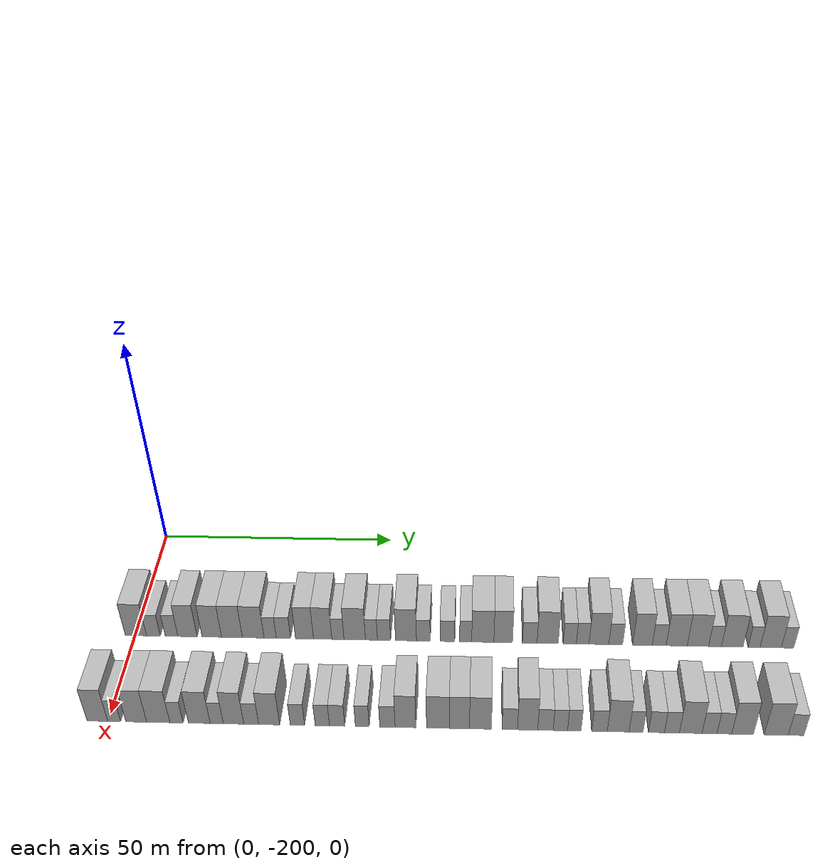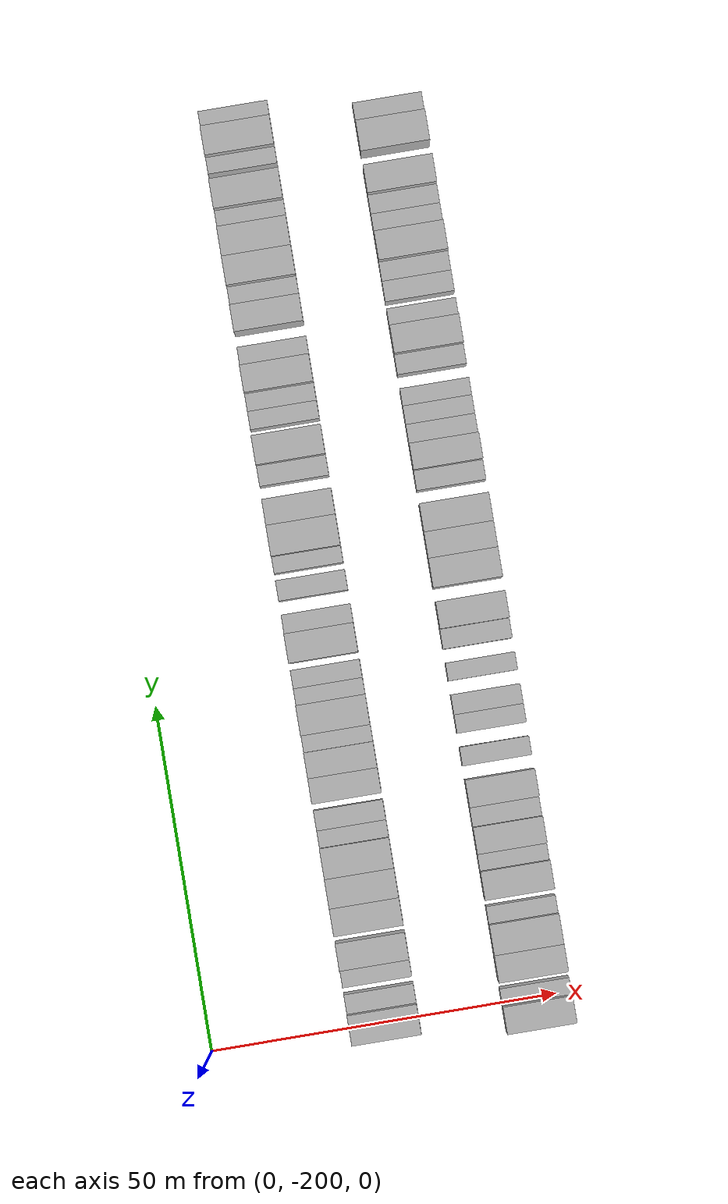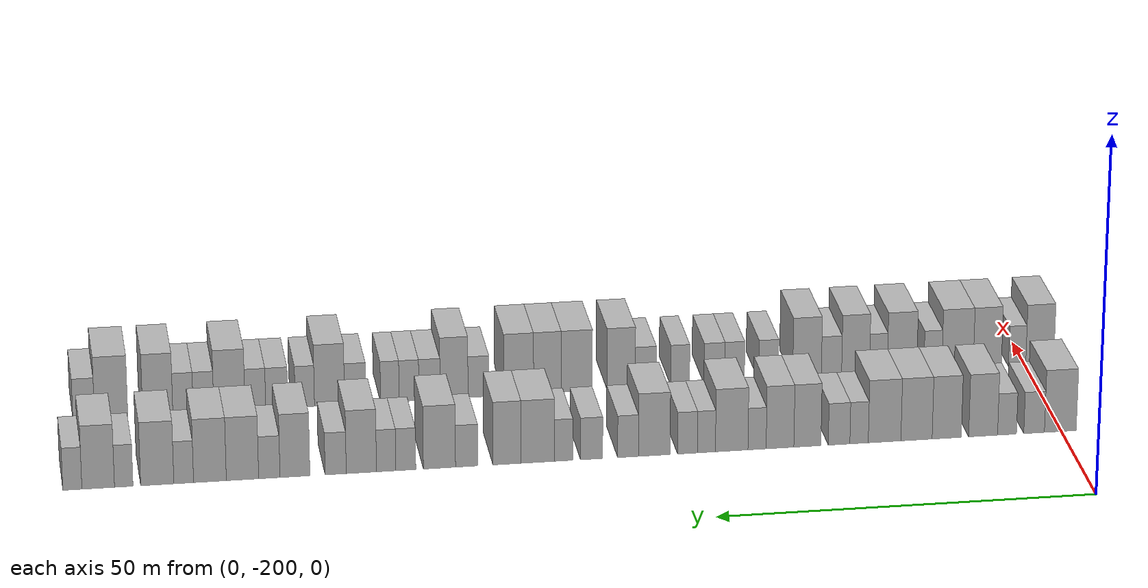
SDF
<sdf version="1.6">
 <world name="default">
  <model name="building_1">
   <static>1</static>
   <pose>25.0000 -199.8333 0 0.000000 0.000000 0.000000</pose>
   <link name="link">
    <pose>0 0 4.50 0 0 0</pose>
    <collision name="collision"><geometry><box><size>10.0000 4.3334 9.0000</size></box></geometry></collision>
    <visual name="visual">
     <cast_shadows>0</cast_shadows>
     <geometry><box><size>10.0000 4.3334 9.0000</size></box></geometry>
     <material>
      <script>
       <uri>model://HANNAS_wall/materials/scripts</uri>
       <uri>model://HANNAS_wall/materials/textures</uri>
       <name>vrc/HANNAS_wall</name>
      </script>
     </material>
    </visual>
   </link>
  </model>
  <model name="building_2">
   <static>1</static>
   <pose>25.0000 -196.2618 0 0.000000 0.000000 0.000000</pose>
   <link name="link">
    <pose>0 0 3.00 0 0 0</pose>
    <collision name="collision"><geometry><box><size>10.0000 2.8096 6.0000</size></box></geometry></collision>
    <visual name="visual">
     <cast_shadows>0</cast_shadows>
     <geometry><box><size>10.0000 2.8096 6.0000</size></box></geometry>
     <material>
      <script>
       <uri>model://HANNAS_wall/materials/scripts</uri>
       <uri>model://HANNAS_wall/materials/textures</uri>
       <name>vrc/HANNAS_wall</name>
      </script>
     </material>
    </visual>
   </link>
  </model>
  <model name="building_3">
   <static>1</static>
   <pose>25.0000 -192.5719 0 0.000000 0.000000 0.000000</pose>
   <link name="link">
    <pose>0 0 3.00 0 0 0</pose>
    <collision name="collision"><geometry><box><size>10.0000 2.5702 6.0000</size></box></geometry></collision>
    <visual name="visual">
     <cast_shadows>0</cast_shadows>
     <geometry><box><size>10.0000 2.5702 6.0000</size></box></geometry>
     <material>
      <script>
       <uri>model://HANNAS_wall/materials/scripts</uri>
       <uri>model://HANNAS_wall/materials/textures</uri>
       <name>vrc/HANNAS_wall</name>
      </script>
     </material>
    </visual>
   </link>
  </model>
  <model name="building_4">
   <static>1</static>
   <pose>25.0000 -189.3240 0 0.000000 0.000000 0.000000</pose>
   <link name="link">
    <pose>0 0 4.50 0 0 0</pose>
    <collision name="collision"><geometry><box><size>10.0000 3.9257 9.0000</size></box></geometry></collision>
    <visual name="visual">
     <cast_shadows>0</cast_shadows>
     <geometry><box><size>10.0000 3.9257 9.0000</size></box></geometry>
     <material>
      <script>
       <uri>model://HANNAS_wall/materials/scripts</uri>
       <uri>model://HANNAS_wall/materials/textures</uri>
       <name>vrc/HANNAS_wall</name>
      </script>
     </material>
    </visual>
   </link>
  </model>
  <model name="building_5">
   <static>1</static>
   <pose>25.0000 -184.3808 0 0.000000 0.000000 0.000000</pose>
   <link name="link">
    <pose>0 0 4.50 0 0 0</pose>
    <collision name="collision"><geometry><box><size>10.0000 3.9606 9.0000</size></box></geometry></collision>
    <visual name="visual">
     <cast_shadows>0</cast_shadows>
     <geometry><box><size>10.0000 3.9606 9.0000</size></box></geometry>
     <material>
      <script>
       <uri>model://HANNAS_wall/materials/scripts</uri>
       <uri>model://HANNAS_wall/materials/textures</uri>
       <name>vrc/HANNAS_wall</name>
      </script>
     </material>
    </visual>
   </link>
  </model>
  <model name="building_6">
   <static>1</static>
   <pose>25.0000 -180.2848 0 0.000000 0.000000 0.000000</pose>
   <link name="link">
    <pose>0 0 4.50 0 0 0</pose>
    <collision name="collision"><geometry><box><size>10.0000 4.2314 9.0000</size></box></geometry></collision>
    <visual name="visual">
     <cast_shadows>0</cast_shadows>
     <geometry><box><size>10.0000 4.2314 9.0000</size></box></geometry>
     <material>
      <script>
       <uri>model://HANNAS_wall/materials/scripts</uri>
       <uri>model://HANNAS_wall/materials/textures</uri>
       <name>vrc/HANNAS_wall</name>
      </script>
     </material>
    </visual>
   </link>
  </model>
  <model name="building_7">
   <static>1</static>
   <pose>25.0000 -175.9644 0 0.000000 0.000000 0.000000</pose>
   <link name="link">
    <pose>0 0 4.50 0 0 0</pose>
    <collision name="collision"><geometry><box><size>10.0000 4.4095 9.0000</size></box></geometry></collision>
    <visual name="visual">
     <cast_shadows>0</cast_shadows>
     <geometry><box><size>10.0000 4.4095 9.0000</size></box></geometry>
     <material>
      <script>
       <uri>model://HANNAS_wall/materials/scripts</uri>
       <uri>model://HANNAS_wall/materials/textures</uri>
       <name>vrc/HANNAS_wall</name>
      </script>
     </material>
    </visual>
   </link>
  </model>
  <model name="building_8">
   <static>1</static>
   <pose>25.0000 -172.5184 0 0.000000 0.000000 0.000000</pose>
   <link name="link">
    <pose>0 0 3.00 0 0 0</pose>
    <collision name="collision"><geometry><box><size>10.0000 2.4825 6.0000</size></box></geometry></collision>
    <visual name="visual">
     <cast_shadows>0</cast_shadows>
     <geometry><box><size>10.0000 2.4825 6.0000</size></box></geometry>
     <material>
      <script>
       <uri>model://HANNAS_wall/materials/scripts</uri>
       <uri>model://HANNAS_wall/materials/textures</uri>
       <name>vrc/HANNAS_wall</name>
      </script>
     </material>
    </visual>
   </link>
  </model>
  <model name="building_9">
   <static>1</static>
   <pose>25.0000 -169.8211 0 0.000000 0.000000 0.000000</pose>
   <link name="link">
    <pose>0 0 3.00 0 0 0</pose>
    <collision name="collision"><geometry><box><size>10.0000 2.9121 6.0000</size></box></geometry></collision>
    <visual name="visual">
     <cast_shadows>0</cast_shadows>
     <geometry><box><size>10.0000 2.9121 6.0000</size></box></geometry>
     <material>
      <script>
       <uri>model://HANNAS_wall/materials/scripts</uri>
       <uri>model://HANNAS_wall/materials/textures</uri>
       <name>vrc/HANNAS_wall</name>
      </script>
     </material>
    </visual>
   </link>
  </model>
  <model name="building_10">
   <static>1</static>
   <pose>25.0000 -165.5450 0 0.000000 0.000000 0.000000</pose>
   <link name="link">
    <pose>0 0 4.50 0 0 0</pose>
    <collision name="collision"><geometry><box><size>10.0000 3.6400 9.0000</size></box></geometry></collision>
    <visual name="visual">
     <cast_shadows>0</cast_shadows>
     <geometry><box><size>10.0000 3.6400 9.0000</size></box></geometry>
     <material>
      <script>
       <uri>model://HANNAS_wall/materials/scripts</uri>
       <uri>model://HANNAS_wall/materials/textures</uri>
       <name>vrc/HANNAS_wall</name>
      </script>
     </material>
    </visual>
   </link>
  </model>
  <model name="building_11">
   <static>1</static>
   <pose>25.0000 -161.8623 0 0.000000 0.000000 0.000000</pose>
   <link name="link">
    <pose>0 0 4.50 0 0 0</pose>
    <collision name="collision"><geometry><box><size>10.0000 3.7253 9.0000</size></box></geometry></collision>
    <visual name="visual">
     <cast_shadows>0</cast_shadows>
     <geometry><box><size>10.0000 3.7253 9.0000</size></box></geometry>
     <material>
      <script>
       <uri>model://HANNAS_wall/materials/scripts</uri>
       <uri>model://HANNAS_wall/materials/textures</uri>
       <name>vrc/HANNAS_wall</name>
      </script>
     </material>
    </visual>
   </link>
  </model>
  <model name="building_12">
   <static>1</static>
   <pose>25.0000 -158.7786 0 0.000000 0.000000 0.000000</pose>
   <link name="link">
    <pose>0 0 3.00 0 0 0</pose>
    <collision name="collision"><geometry><box><size>10.0000 2.4423 6.0000</size></box></geometry></collision>
    <visual name="visual">
     <cast_shadows>0</cast_shadows>
     <geometry><box><size>10.0000 2.4423 6.0000</size></box></geometry>
     <material>
      <script>
       <uri>model://HANNAS_wall/materials/scripts</uri>
       <uri>model://HANNAS_wall/materials/textures</uri>
       <name>vrc/HANNAS_wall</name>
      </script>
     </material>
    </visual>
   </link>
  </model>
  <model name="building_13">
   <static>1</static>
   <pose>25.0000 -155.3770 0 0.000000 0.000000 0.000000</pose>
   <link name="link">
    <pose>0 0 4.50 0 0 0</pose>
    <collision name="collision"><geometry><box><size>10.0000 4.3609 9.0000</size></box></geometry></collision>
    <visual name="visual">
     <cast_shadows>0</cast_shadows>
     <geometry><box><size>10.0000 4.3609 9.0000</size></box></geometry>
     <material>
      <script>
       <uri>model://HANNAS_wall/materials/scripts</uri>
       <uri>model://HANNAS_wall/materials/textures</uri>
       <name>vrc/HANNAS_wall</name>
      </script>
     </material>
    </visual>
   </link>
  </model>
  <model name="building_14">
   <static>1</static>
   <pose>25.0000 -151.9902 0 0.000000 0.000000 0.000000</pose>
   <link name="link">
    <pose>0 0 3.00 0 0 0</pose>
    <collision name="collision"><geometry><box><size>10.0000 2.4127 6.0000</size></box></geometry></collision>
    <visual name="visual">
     <cast_shadows>0</cast_shadows>
     <geometry><box><size>10.0000 2.4127 6.0000</size></box></geometry>
     <material>
      <script>
       <uri>model://HANNAS_wall/materials/scripts</uri>
       <uri>model://HANNAS_wall/materials/textures</uri>
       <name>vrc/HANNAS_wall</name>
      </script>
     </material>
    </visual>
   </link>
  </model>
  <model name="building_15">
   <static>1</static>
   <pose>25.0000 -149.4547 0 0.000000 0.000000 0.000000</pose>
   <link name="link">
    <pose>0 0 3.00 0 0 0</pose>
    <collision name="collision"><geometry><box><size>10.0000 2.6583 6.0000</size></box></geometry></collision>
    <visual name="visual">
     <cast_shadows>0</cast_shadows>
     <geometry><box><size>10.0000 2.6583 6.0000</size></box></geometry>
     <material>
      <script>
       <uri>model://HANNAS_wall/materials/scripts</uri>
       <uri>model://HANNAS_wall/materials/textures</uri>
       <name>vrc/HANNAS_wall</name>
      </script>
     </material>
    </visual>
   </link>
  </model>
  <model name="building_16">
   <static>1</static>
   <pose>25.0000 -145.0097 0 0.000000 0.000000 0.000000</pose>
   <link name="link">
    <pose>0 0 4.50 0 0 0</pose>
    <collision name="collision"><geometry><box><size>10.0000 4.2316 9.0000</size></box></geometry></collision>
    <visual name="visual">
     <cast_shadows>0</cast_shadows>
     <geometry><box><size>10.0000 4.2316 9.0000</size></box></geometry>
     <material>
      <script>
       <uri>model://HANNAS_wall/materials/scripts</uri>
       <uri>model://HANNAS_wall/materials/textures</uri>
       <name>vrc/HANNAS_wall</name>
      </script>
     </material>
    </visual>
   </link>
  </model>
  <model name="building_17">
   <static>1</static>
   <pose>25.0000 -141.5099 0 0.000000 0.000000 0.000000</pose>
   <link name="link">
    <pose>0 0 3.00 0 0 0</pose>
    <collision name="collision"><geometry><box><size>10.0000 2.7680 6.0000</size></box></geometry></collision>
    <visual name="visual">
     <cast_shadows>0</cast_shadows>
     <geometry><box><size>10.0000 2.7680 6.0000</size></box></geometry>
     <material>
      <script>
       <uri>model://HANNAS_wall/materials/scripts</uri>
       <uri>model://HANNAS_wall/materials/textures</uri>
       <name>vrc/HANNAS_wall</name>
      </script>
     </material>
    </visual>
   </link>
  </model>
  <model name="building_18">
   <static>1</static>
   <pose>25.0000 -136.6459 0 0.000000 0.000000 0.000000</pose>
   <link name="link">
    <pose>0 0 3.00 0 0 0</pose>
    <collision name="collision"><geometry><box><size>10.0000 2.9599 6.0000</size></box></geometry></collision>
    <visual name="visual">
     <cast_shadows>0</cast_shadows>
     <geometry><box><size>10.0000 2.9599 6.0000</size></box></geometry>
     <material>
      <script>
       <uri>model://HANNAS_wall/materials/scripts</uri>
       <uri>model://HANNAS_wall/materials/textures</uri>
       <name>vrc/HANNAS_wall</name>
      </script>
     </material>
    </visual>
   </link>
  </model>
  <model name="building_19">
   <static>1</static>
   <pose>25.0000 -132.9548 0 0.000000 0.000000 0.000000</pose>
   <link name="link">
    <pose>0 0 3.00 0 0 0</pose>
    <collision name="collision"><geometry><box><size>10.0000 2.4223 6.0000</size></box></geometry></collision>
    <visual name="visual">
     <cast_shadows>0</cast_shadows>
     <geometry><box><size>10.0000 2.4223 6.0000</size></box></geometry>
     <material>
      <script>
       <uri>model://HANNAS_wall/materials/scripts</uri>
       <uri>model://HANNAS_wall/materials/textures</uri>
       <name>vrc/HANNAS_wall</name>
      </script>
     </material>
    </visual>
   </link>
  </model>
  <model name="building_20">
   <static>1</static>
   <pose>25.0000 -129.5151 0 0.000000 0.000000 0.000000</pose>
   <link name="link">
    <pose>0 0 4.50 0 0 0</pose>
    <collision name="collision"><geometry><box><size>10.0000 4.4571 9.0000</size></box></geometry></collision>
    <visual name="visual">
     <cast_shadows>0</cast_shadows>
     <geometry><box><size>10.0000 4.4571 9.0000</size></box></geometry>
     <material>
      <script>
       <uri>model://HANNAS_wall/materials/scripts</uri>
       <uri>model://HANNAS_wall/materials/textures</uri>
       <name>vrc/HANNAS_wall</name>
      </script>
     </material>
    </visual>
   </link>
  </model>
  <model name="building_21">
   <static>1</static>
   <pose>25.0000 -125.4136 0 0.000000 0.000000 0.000000</pose>
   <link name="link">
    <pose>0 0 4.50 0 0 0</pose>
    <collision name="collision"><geometry><box><size>10.0000 3.7458 9.0000</size></box></geometry></collision>
    <visual name="visual">
     <cast_shadows>0</cast_shadows>
     <geometry><box><size>10.0000 3.7458 9.0000</size></box></geometry>
     <material>
      <script>
       <uri>model://HANNAS_wall/materials/scripts</uri>
       <uri>model://HANNAS_wall/materials/textures</uri>
       <name>vrc/HANNAS_wall</name>
      </script>
     </material>
    </visual>
   </link>
  </model>
  <model name="building_22">
   <static>1</static>
   <pose>25.0000 -120.0631 0 0.000000 0.000000 0.000000</pose>
   <link name="link">
    <pose>0 0 3.00 0 0 0</pose>
    <collision name="collision"><geometry><box><size>10.0000 2.9552 6.0000</size></box></geometry></collision>
    <visual name="visual">
     <cast_shadows>0</cast_shadows>
     <geometry><box><size>10.0000 2.9552 6.0000</size></box></geometry>
     <material>
      <script>
       <uri>model://HANNAS_wall/materials/scripts</uri>
       <uri>model://HANNAS_wall/materials/textures</uri>
       <name>vrc/HANNAS_wall</name>
      </script>
     </material>
    </visual>
   </link>
  </model>
  <model name="building_23">
   <static>1</static>
   <pose>25.0000 -116.4614 0 0.000000 0.000000 0.000000</pose>
   <link name="link">
    <pose>0 0 4.50 0 0 0</pose>
    <collision name="collision"><geometry><box><size>10.0000 4.2482 9.0000</size></box></geometry></collision>
    <visual name="visual">
     <cast_shadows>0</cast_shadows>
     <geometry><box><size>10.0000 4.2482 9.0000</size></box></geometry>
     <material>
      <script>
       <uri>model://HANNAS_wall/materials/scripts</uri>
       <uri>model://HANNAS_wall/materials/textures</uri>
       <name>vrc/HANNAS_wall</name>
      </script>
     </material>
    </visual>
   </link>
  </model>
  <model name="building_24">
   <static>1</static>
   <pose>25.0000 -112.0185 0 0.000000 0.000000 0.000000</pose>
   <link name="link">
    <pose>0 0 3.00 0 0 0</pose>
    <collision name="collision"><geometry><box><size>10.0000 2.6375 6.0000</size></box></geometry></collision>
    <visual name="visual">
     <cast_shadows>0</cast_shadows>
     <geometry><box><size>10.0000 2.6375 6.0000</size></box></geometry>
     <material>
      <script>
       <uri>model://HANNAS_wall/materials/scripts</uri>
       <uri>model://HANNAS_wall/materials/textures</uri>
       <name>vrc/HANNAS_wall</name>
      </script>
     </material>
    </visual>
   </link>
  </model>
  <model name="building_25">
   <static>1</static>
   <pose>25.0000 -109.4265 0 0.000000 0.000000 0.000000</pose>
   <link name="link">
    <pose>0 0 3.00 0 0 0</pose>
    <collision name="collision"><geometry><box><size>10.0000 2.5464 6.0000</size></box></geometry></collision>
    <visual name="visual">
     <cast_shadows>0</cast_shadows>
     <geometry><box><size>10.0000 2.5464 6.0000</size></box></geometry>
     <material>
      <script>
       <uri>model://HANNAS_wall/materials/scripts</uri>
       <uri>model://HANNAS_wall/materials/textures</uri>
       <name>vrc/HANNAS_wall</name>
      </script>
     </material>
    </visual>
   </link>
  </model>
  <model name="building_26">
   <static>1</static>
   <pose>25.0000 -106.1622 0 0.000000 0.000000 0.000000</pose>
   <link name="link">
    <pose>0 0 4.50 0 0 0</pose>
    <collision name="collision"><geometry><box><size>10.0000 3.9821 9.0000</size></box></geometry></collision>
    <visual name="visual">
     <cast_shadows>0</cast_shadows>
     <geometry><box><size>10.0000 3.9821 9.0000</size></box></geometry>
     <material>
      <script>
       <uri>model://HANNAS_wall/materials/scripts</uri>
       <uri>model://HANNAS_wall/materials/textures</uri>
       <name>vrc/HANNAS_wall</name>
      </script>
     </material>
    </visual>
   </link>
  </model>
  <model name="building_27">
   <static>1</static>
   <pose>25.0000 -102.7813 0 0.000000 0.000000 0.000000</pose>
   <link name="link">
    <pose>0 0 3.00 0 0 0</pose>
    <collision name="collision"><geometry><box><size>10.0000 2.7798 6.0000</size></box></geometry></collision>
    <visual name="visual">
     <cast_shadows>0</cast_shadows>
     <geometry><box><size>10.0000 2.7798 6.0000</size></box></geometry>
     <material>
      <script>
       <uri>model://HANNAS_wall/materials/scripts</uri>
       <uri>model://HANNAS_wall/materials/textures</uri>
       <name>vrc/HANNAS_wall</name>
      </script>
     </material>
    </visual>
   </link>
  </model>
  <model name="building_28">
   <static>1</static>
   <pose>25.0000 -97.4306 0 0.000000 0.000000 0.000000</pose>
   <link name="link">
    <pose>0 0 4.50 0 0 0</pose>
    <collision name="collision"><geometry><box><size>10.0000 3.9216 9.0000</size></box></geometry></collision>
    <visual name="visual">
     <cast_shadows>0</cast_shadows>
     <geometry><box><size>10.0000 3.9216 9.0000</size></box></geometry>
     <material>
      <script>
       <uri>model://HANNAS_wall/materials/scripts</uri>
       <uri>model://HANNAS_wall/materials/textures</uri>
       <name>vrc/HANNAS_wall</name>
      </script>
     </material>
    </visual>
   </link>
  </model>
  <model name="building_29">
   <static>1</static>
   <pose>25.0000 -94.0708 0 0.000000 0.000000 0.000000</pose>
   <link name="link">
    <pose>0 0 3.00 0 0 0</pose>
    <collision name="collision"><geometry><box><size>10.0000 2.7980 6.0000</size></box></geometry></collision>
    <visual name="visual">
     <cast_shadows>0</cast_shadows>
     <geometry><box><size>10.0000 2.7980 6.0000</size></box></geometry>
     <material>
      <script>
       <uri>model://HANNAS_wall/materials/scripts</uri>
       <uri>model://HANNAS_wall/materials/textures</uri>
       <name>vrc/HANNAS_wall</name>
      </script>
     </material>
    </visual>
   </link>
  </model>
  <model name="building_30">
   <static>1</static>
   <pose>25.0000 -90.5573 0 0.000000 0.000000 0.000000</pose>
   <link name="link">
    <pose>0 0 4.50 0 0 0</pose>
    <collision name="collision"><geometry><box><size>10.0000 4.2291 9.0000</size></box></geometry></collision>
    <visual name="visual">
     <cast_shadows>0</cast_shadows>
     <geometry><box><size>10.0000 4.2291 9.0000</size></box></geometry>
     <material>
      <script>
       <uri>model://HANNAS_wall/materials/scripts</uri>
       <uri>model://HANNAS_wall/materials/textures</uri>
       <name>vrc/HANNAS_wall</name>
      </script>
     </material>
    </visual>
   </link>
  </model>
  <model name="building_31">
   <static>1</static>
   <pose>25.0000 -86.3015 0 0.000000 0.000000 0.000000</pose>
   <link name="link">
    <pose>0 0 4.50 0 0 0</pose>
    <collision name="collision"><geometry><box><size>10.0000 4.2824 9.0000</size></box></geometry></collision>
    <visual name="visual">
     <cast_shadows>0</cast_shadows>
     <geometry><box><size>10.0000 4.2824 9.0000</size></box></geometry>
     <material>
      <script>
       <uri>model://HANNAS_wall/materials/scripts</uri>
       <uri>model://HANNAS_wall/materials/textures</uri>
       <name>vrc/HANNAS_wall</name>
      </script>
     </material>
    </visual>
   </link>
  </model>
  <model name="building_32">
   <static>1</static>
   <pose>25.0000 -82.8754 0 0.000000 0.000000 0.000000</pose>
   <link name="link">
    <pose>0 0 3.00 0 0 0</pose>
    <collision name="collision"><geometry><box><size>10.0000 2.5700 6.0000</size></box></geometry></collision>
    <visual name="visual">
     <cast_shadows>0</cast_shadows>
     <geometry><box><size>10.0000 2.5700 6.0000</size></box></geometry>
     <material>
      <script>
       <uri>model://HANNAS_wall/materials/scripts</uri>
       <uri>model://HANNAS_wall/materials/textures</uri>
       <name>vrc/HANNAS_wall</name>
      </script>
     </material>
    </visual>
   </link>
  </model>
  <model name="building_33">
   <static>1</static>
   <pose>25.0000 -79.4284 0 0.000000 0.000000 0.000000</pose>
   <link name="link">
    <pose>0 0 4.50 0 0 0</pose>
    <collision name="collision"><geometry><box><size>10.0000 4.3240 9.0000</size></box></geometry></collision>
    <visual name="visual">
     <cast_shadows>0</cast_shadows>
     <geometry><box><size>10.0000 4.3240 9.0000</size></box></geometry>
     <material>
      <script>
       <uri>model://HANNAS_wall/materials/scripts</uri>
       <uri>model://HANNAS_wall/materials/textures</uri>
       <name>vrc/HANNAS_wall</name>
      </script>
     </material>
    </visual>
   </link>
  </model>
  <model name="building_34">
   <static>1</static>
   <pose>25.0000 -75.0642 0 0.000000 0.000000 0.000000</pose>
   <link name="link">
    <pose>0 0 3.00 0 0 0</pose>
    <collision name="collision"><geometry><box><size>10.0000 2.4042 6.0000</size></box></geometry></collision>
    <visual name="visual">
     <cast_shadows>0</cast_shadows>
     <geometry><box><size>10.0000 2.4042 6.0000</size></box></geometry>
     <material>
      <script>
       <uri>model://HANNAS_wall/materials/scripts</uri>
       <uri>model://HANNAS_wall/materials/textures</uri>
       <name>vrc/HANNAS_wall</name>
      </script>
     </material>
    </visual>
   </link>
  </model>
  <model name="building_35">
   <static>1</static>
   <pose>25.0000 -71.7438 0 0.000000 0.000000 0.000000</pose>
   <link name="link">
    <pose>0 0 4.50 0 0 0</pose>
    <collision name="collision"><geometry><box><size>10.0000 4.2366 9.0000</size></box></geometry></collision>
    <visual name="visual">
     <cast_shadows>0</cast_shadows>
     <geometry><box><size>10.0000 4.2366 9.0000</size></box></geometry>
     <material>
      <script>
       <uri>model://HANNAS_wall/materials/scripts</uri>
       <uri>model://HANNAS_wall/materials/textures</uri>
       <name>vrc/HANNAS_wall</name>
      </script>
     </material>
    </visual>
   </link>
  </model>
  <model name="building_36">
   <static>1</static>
   <pose>25.0000 -68.3886 0 0.000000 0.000000 0.000000</pose>
   <link name="link">
    <pose>0 0 3.00 0 0 0</pose>
    <collision name="collision"><geometry><box><size>10.0000 2.4737 6.0000</size></box></geometry></collision>
    <visual name="visual">
     <cast_shadows>0</cast_shadows>
     <geometry><box><size>10.0000 2.4737 6.0000</size></box></geometry>
     <material>
      <script>
       <uri>model://HANNAS_wall/materials/scripts</uri>
       <uri>model://HANNAS_wall/materials/textures</uri>
       <name>vrc/HANNAS_wall</name>
      </script>
     </material>
    </visual>
   </link>
  </model>
  <model name="building_110">
   <static>1</static>
   <pose>47.0000 -202.0386 0 0.000000 0.000000 0.000000</pose>
   <link name="link">
    <pose>0 0 4.50 0 0 0</pose>
    <collision name="collision"><geometry><box><size>10.0000 3.9229 9.0000</size></box></geometry></collision>
    <visual name="visual">
     <cast_shadows>0</cast_shadows>
     <geometry><box><size>10.0000 3.9229 9.0000</size></box></geometry>
     <material>
      <script>
       <uri>model://HANNAS_wall/materials/scripts</uri>
       <uri>model://HANNAS_wall/materials/textures</uri>
       <name>vrc/HANNAS_wall</name>
      </script>
     </material>
    </visual>
   </link>
  </model>
  <model name="building_111">
   <static>1</static>
   <pose>47.0000 -198.8646 0 0.000000 0.000000 0.000000</pose>
   <link name="link">
    <pose>0 0 3.00 0 0 0</pose>
    <collision name="collision"><geometry><box><size>10.0000 2.4251 6.0000</size></box></geometry></collision>
    <visual name="visual">
     <cast_shadows>0</cast_shadows>
     <geometry><box><size>10.0000 2.4251 6.0000</size></box></geometry>
     <material>
      <script>
       <uri>model://HANNAS_wall/materials/scripts</uri>
       <uri>model://HANNAS_wall/materials/textures</uri>
       <name>vrc/HANNAS_wall</name>
      </script>
     </material>
    </visual>
   </link>
  </model>
  <model name="building_112">
   <static>1</static>
   <pose>47.0000 -194.6824 0 0.000000 0.000000 0.000000</pose>
   <link name="link">
    <pose>0 0 4.50 0 0 0</pose>
    <collision name="collision"><geometry><box><size>10.0000 3.9392 9.0000</size></box></geometry></collision>
    <visual name="visual">
     <cast_shadows>0</cast_shadows>
     <geometry><box><size>10.0000 3.9392 9.0000</size></box></geometry>
     <material>
      <script>
       <uri>model://HANNAS_wall/materials/scripts</uri>
       <uri>model://HANNAS_wall/materials/textures</uri>
       <name>vrc/HANNAS_wall</name>
      </script>
     </material>
    </visual>
   </link>
  </model>
  <model name="building_113">
   <static>1</static>
   <pose>47.0000 -190.5179 0 0.000000 0.000000 0.000000</pose>
   <link name="link">
    <pose>0 0 4.50 0 0 0</pose>
    <collision name="collision"><geometry><box><size>10.0000 4.3899 9.0000</size></box></geometry></collision>
    <visual name="visual">
     <cast_shadows>0</cast_shadows>
     <geometry><box><size>10.0000 4.3899 9.0000</size></box></geometry>
     <material>
      <script>
       <uri>model://HANNAS_wall/materials/scripts</uri>
       <uri>model://HANNAS_wall/materials/textures</uri>
       <name>vrc/HANNAS_wall</name>
      </script>
     </material>
    </visual>
   </link>
  </model>
  <model name="building_114">
   <static>1</static>
   <pose>47.0000 -187.0676 0 0.000000 0.000000 0.000000</pose>
   <link name="link">
    <pose>0 0 3.00 0 0 0</pose>
    <collision name="collision"><geometry><box><size>10.0000 2.5107 6.0000</size></box></geometry></collision>
    <visual name="visual">
     <cast_shadows>0</cast_shadows>
     <geometry><box><size>10.0000 2.5107 6.0000</size></box></geometry>
     <material>
      <script>
       <uri>model://HANNAS_wall/materials/scripts</uri>
       <uri>model://HANNAS_wall/materials/textures</uri>
       <name>vrc/HANNAS_wall</name>
      </script>
     </material>
    </visual>
   </link>
  </model>
  <model name="building_115">
   <static>1</static>
   <pose>47.0000 -182.7547 0 0.000000 0.000000 0.000000</pose>
   <link name="link">
    <pose>0 0 4.50 0 0 0</pose>
    <collision name="collision"><geometry><box><size>10.0000 4.1152 9.0000</size></box></geometry></collision>
    <visual name="visual">
     <cast_shadows>0</cast_shadows>
     <geometry><box><size>10.0000 4.1152 9.0000</size></box></geometry>
     <material>
      <script>
       <uri>model://HANNAS_wall/materials/scripts</uri>
       <uri>model://HANNAS_wall/materials/textures</uri>
       <name>vrc/HANNAS_wall</name>
      </script>
     </material>
    </visual>
   </link>
  </model>
  <model name="building_116">
   <static>1</static>
   <pose>47.0000 -179.4573 0 0.000000 0.000000 0.000000</pose>
   <link name="link">
    <pose>0 0 3.00 0 0 0</pose>
    <collision name="collision"><geometry><box><size>10.0000 2.4795 6.0000</size></box></geometry></collision>
    <visual name="visual">
     <cast_shadows>0</cast_shadows>
     <geometry><box><size>10.0000 2.4795 6.0000</size></box></geometry>
     <material>
      <script>
       <uri>model://HANNAS_wall/materials/scripts</uri>
       <uri>model://HANNAS_wall/materials/textures</uri>
       <name>vrc/HANNAS_wall</name>
      </script>
     </material>
    </visual>
   </link>
  </model>
  <model name="building_117">
   <static>1</static>
   <pose>47.0000 -176.2833 0 0.000000 0.000000 0.000000</pose>
   <link name="link">
    <pose>0 0 4.50 0 0 0</pose>
    <collision name="collision"><geometry><box><size>10.0000 3.8685 9.0000</size></box></geometry></collision>
    <visual name="visual">
     <cast_shadows>0</cast_shadows>
     <geometry><box><size>10.0000 3.8685 9.0000</size></box></geometry>
     <material>
      <script>
       <uri>model://HANNAS_wall/materials/scripts</uri>
       <uri>model://HANNAS_wall/materials/textures</uri>
       <name>vrc/HANNAS_wall</name>
      </script>
     </material>
    </visual>
   </link>
  </model>
  <model name="building_118">
   <static>1</static>
   <pose>47.0000 -172.9380 0 0.000000 0.000000 0.000000</pose>
   <link name="link">
    <pose>0 0 3.00 0 0 0</pose>
    <collision name="collision"><geometry><box><size>10.0000 2.8221 6.0000</size></box></geometry></collision>
    <visual name="visual">
     <cast_shadows>0</cast_shadows>
     <geometry><box><size>10.0000 2.8221 6.0000</size></box></geometry>
     <material>
      <script>
       <uri>model://HANNAS_wall/materials/scripts</uri>
       <uri>model://HANNAS_wall/materials/textures</uri>
       <name>vrc/HANNAS_wall</name>
      </script>
     </material>
    </visual>
   </link>
  </model>
  <model name="building_119">
   <static>1</static>
   <pose>47.0000 -169.5444 0 0.000000 0.000000 0.000000</pose>
   <link name="link">
    <pose>0 0 4.50 0 0 0</pose>
    <collision name="collision"><geometry><box><size>10.0000 3.9651 9.0000</size></box></geometry></collision>
    <visual name="visual">
     <cast_shadows>0</cast_shadows>
     <geometry><box><size>10.0000 3.9651 9.0000</size></box></geometry>
     <material>
      <script>
       <uri>model://HANNAS_wall/materials/scripts</uri>
       <uri>model://HANNAS_wall/materials/textures</uri>
       <name>vrc/HANNAS_wall</name>
      </script>
     </material>
    </visual>
   </link>
  </model>
  <model name="building_120">
   <static>1</static>
   <pose>47.0000 -164.2148 0 0.000000 0.000000 0.000000</pose>
   <link name="link">
    <pose>0 0 3.00 0 0 0</pose>
    <collision name="collision"><geometry><box><size>10.0000 2.6940 6.0000</size></box></geometry></collision>
    <visual name="visual">
     <cast_shadows>0</cast_shadows>
     <geometry><box><size>10.0000 2.6940 6.0000</size></box></geometry>
     <material>
      <script>
       <uri>model://HANNAS_wall/materials/scripts</uri>
       <uri>model://HANNAS_wall/materials/textures</uri>
       <name>vrc/HANNAS_wall</name>
      </script>
     </material>
    </visual>
   </link>
  </model>
  <model name="building_121">
   <static>1</static>
   <pose>47.0000 -159.5209 0 0.000000 0.000000 0.000000</pose>
   <link name="link">
    <pose>0 0 3.00 0 0 0</pose>
    <collision name="collision"><geometry><box><size>10.0000 2.6938 6.0000</size></box></geometry></collision>
    <visual name="visual">
     <cast_shadows>0</cast_shadows>
     <geometry><box><size>10.0000 2.6938 6.0000</size></box></geometry>
     <material>
      <script>
       <uri>model://HANNAS_wall/materials/scripts</uri>
       <uri>model://HANNAS_wall/materials/textures</uri>
       <name>vrc/HANNAS_wall</name>
      </script>
     </material>
    </visual>
   </link>
  </model>
  <model name="building_122">
   <static>1</static>
   <pose>47.0000 -156.7363 0 0.000000 0.000000 0.000000</pose>
   <link name="link">
    <pose>0 0 3.00 0 0 0</pose>
    <collision name="collision"><geometry><box><size>10.0000 2.8753 6.0000</size></box></geometry></collision>
    <visual name="visual">
     <cast_shadows>0</cast_shadows>
     <geometry><box><size>10.0000 2.8753 6.0000</size></box></geometry>
     <material>
      <script>
       <uri>model://HANNAS_wall/materials/scripts</uri>
       <uri>model://HANNAS_wall/materials/textures</uri>
       <name>vrc/HANNAS_wall</name>
      </script>
     </material>
    </visual>
   </link>
  </model>
  <model name="building_123">
   <static>1</static>
   <pose>47.0000 -152.0061 0 0.000000 0.000000 0.000000</pose>
   <link name="link">
    <pose>0 0 3.00 0 0 0</pose>
    <collision name="collision"><geometry><box><size>10.0000 2.5850 6.0000</size></box></geometry></collision>
    <visual name="visual">
     <cast_shadows>0</cast_shadows>
     <geometry><box><size>10.0000 2.5850 6.0000</size></box></geometry>
     <material>
      <script>
       <uri>model://HANNAS_wall/materials/scripts</uri>
       <uri>model://HANNAS_wall/materials/textures</uri>
       <name>vrc/HANNAS_wall</name>
      </script>
     </material>
    </visual>
   </link>
  </model>
  <model name="building_124">
   <static>1</static>
   <pose>47.0000 -147.2722 0 0.000000 0.000000 0.000000</pose>
   <link name="link">
    <pose>0 0 3.00 0 0 0</pose>
    <collision name="collision"><geometry><box><size>10.0000 2.8829 6.0000</size></box></geometry></collision>
    <visual name="visual">
     <cast_shadows>0</cast_shadows>
     <geometry><box><size>10.0000 2.8829 6.0000</size></box></geometry>
     <material>
      <script>
       <uri>model://HANNAS_wall/materials/scripts</uri>
       <uri>model://HANNAS_wall/materials/textures</uri>
       <name>vrc/HANNAS_wall</name>
      </script>
     </material>
    </visual>
   </link>
  </model>
  <model name="building_125">
   <static>1</static>
   <pose>47.0000 -143.8800 0 0.000000 0.000000 0.000000</pose>
   <link name="link">
    <pose>0 0 4.50 0 0 0</pose>
    <collision name="collision"><geometry><box><size>10.0000 3.9015 9.0000</size></box></geometry></collision>
    <visual name="visual">
     <cast_shadows>0</cast_shadows>
     <geometry><box><size>10.0000 3.9015 9.0000</size></box></geometry>
     <material>
      <script>
       <uri>model://HANNAS_wall/materials/scripts</uri>
       <uri>model://HANNAS_wall/materials/textures</uri>
       <name>vrc/HANNAS_wall</name>
      </script>
     </material>
    </visual>
   </link>
  </model>
  <model name="building_126">
   <static>1</static>
   <pose>47.0000 -137.7977 0 0.000000 0.000000 0.000000</pose>
   <link name="link">
    <pose>0 0 4.50 0 0 0</pose>
    <collision name="collision"><geometry><box><size>10.0000 4.2631 9.0000</size></box></geometry></collision>
    <visual name="visual">
     <cast_shadows>0</cast_shadows>
     <geometry><box><size>10.0000 4.2631 9.0000</size></box></geometry>
     <material>
      <script>
       <uri>model://HANNAS_wall/materials/scripts</uri>
       <uri>model://HANNAS_wall/materials/textures</uri>
       <name>vrc/HANNAS_wall</name>
      </script>
     </material>
    </visual>
   </link>
  </model>
  <model name="building_127">
   <static>1</static>
   <pose>47.0000 -133.7743 0 0.000000 0.000000 0.000000</pose>
   <link name="link">
    <pose>0 0 4.50 0 0 0</pose>
    <collision name="collision"><geometry><box><size>10.0000 3.7837 9.0000</size></box></geometry></collision>
    <visual name="visual">
     <cast_shadows>0</cast_shadows>
     <geometry><box><size>10.0000 3.7837 9.0000</size></box></geometry>
     <material>
      <script>
       <uri>model://HANNAS_wall/materials/scripts</uri>
       <uri>model://HANNAS_wall/materials/textures</uri>
       <name>vrc/HANNAS_wall</name>
      </script>
     </material>
    </visual>
   </link>
  </model>
  <model name="building_128">
   <static>1</static>
   <pose>47.0000 -129.8397 0 0.000000 0.000000 0.000000</pose>
   <link name="link">
    <pose>0 0 4.50 0 0 0</pose>
    <collision name="collision"><geometry><box><size>10.0000 4.0854 9.0000</size></box></geometry></collision>
    <visual name="visual">
     <cast_shadows>0</cast_shadows>
     <geometry><box><size>10.0000 4.0854 9.0000</size></box></geometry>
     <material>
      <script>
       <uri>model://HANNAS_wall/materials/scripts</uri>
       <uri>model://HANNAS_wall/materials/textures</uri>
       <name>vrc/HANNAS_wall</name>
      </script>
     </material>
    </visual>
   </link>
  </model>
  <model name="building_129">
   <static>1</static>
   <pose>47.0000 -124.3589 0 0.000000 0.000000 0.000000</pose>
   <link name="link">
    <pose>0 0 3.00 0 0 0</pose>
    <collision name="collision"><geometry><box><size>10.0000 2.8762 6.0000</size></box></geometry></collision>
    <visual name="visual">
     <cast_shadows>0</cast_shadows>
     <geometry><box><size>10.0000 2.8762 6.0000</size></box></geometry>
     <material>
      <script>
       <uri>model://HANNAS_wall/materials/scripts</uri>
       <uri>model://HANNAS_wall/materials/textures</uri>
       <name>vrc/HANNAS_wall</name>
      </script>
     </material>
    </visual>
   </link>
  </model>
  <model name="building_130">
   <static>1</static>
   <pose>47.0000 -121.0186 0 0.000000 0.000000 0.000000</pose>
   <link name="link">
    <pose>0 0 4.50 0 0 0</pose>
    <collision name="collision"><geometry><box><size>10.0000 3.8044 9.0000</size></box></geometry></collision>
    <visual name="visual">
     <cast_shadows>0</cast_shadows>
     <geometry><box><size>10.0000 3.8044 9.0000</size></box></geometry>
     <material>
      <script>
       <uri>model://HANNAS_wall/materials/scripts</uri>
       <uri>model://HANNAS_wall/materials/textures</uri>
       <name>vrc/HANNAS_wall</name>
      </script>
     </material>
    </visual>
   </link>
  </model>
  <model name="building_131">
   <static>1</static>
   <pose>47.0000 -117.6714 0 0.000000 0.000000 0.000000</pose>
   <link name="link">
    <pose>0 0 3.00 0 0 0</pose>
    <collision name="collision"><geometry><box><size>10.0000 2.8899 6.0000</size></box></geometry></collision>
    <visual name="visual">
     <cast_shadows>0</cast_shadows>
     <geometry><box><size>10.0000 2.8899 6.0000</size></box></geometry>
     <material>
      <script>
       <uri>model://HANNAS_wall/materials/scripts</uri>
       <uri>model://HANNAS_wall/materials/textures</uri>
       <name>vrc/HANNAS_wall</name>
      </script>
     </material>
    </visual>
   </link>
  </model>
  <model name="building_132">
   <static>1</static>
   <pose>47.0000 -114.8799 0 0.000000 0.000000 0.000000</pose>
   <link name="link">
    <pose>0 0 3.00 0 0 0</pose>
    <collision name="collision"><geometry><box><size>10.0000 2.6931 6.0000</size></box></geometry></collision>
    <visual name="visual">
     <cast_shadows>0</cast_shadows>
     <geometry><box><size>10.0000 2.6931 6.0000</size></box></geometry>
     <material>
      <script>
       <uri>model://HANNAS_wall/materials/scripts</uri>
       <uri>model://HANNAS_wall/materials/textures</uri>
       <name>vrc/HANNAS_wall</name>
      </script>
     </material>
    </visual>
   </link>
  </model>
  <model name="building_133">
   <static>1</static>
   <pose>47.0000 -112.2743 0 0.000000 0.000000 0.000000</pose>
   <link name="link">
    <pose>0 0 3.00 0 0 0</pose>
    <collision name="collision"><geometry><box><size>10.0000 2.5181 6.0000</size></box></geometry></collision>
    <visual name="visual">
     <cast_shadows>0</cast_shadows>
     <geometry><box><size>10.0000 2.5181 6.0000</size></box></geometry>
     <material>
      <script>
       <uri>model://HANNAS_wall/materials/scripts</uri>
       <uri>model://HANNAS_wall/materials/textures</uri>
       <name>vrc/HANNAS_wall</name>
      </script>
     </material>
    </visual>
   </link>
  </model>
  <model name="building_134">
   <static>1</static>
   <pose>47.0000 -107.5713 0 0.000000 0.000000 0.000000</pose>
   <link name="link">
    <pose>0 0 3.00 0 0 0</pose>
    <collision name="collision"><geometry><box><size>10.0000 2.8878 6.0000</size></box></geometry></collision>
    <visual name="visual">
     <cast_shadows>0</cast_shadows>
     <geometry><box><size>10.0000 2.8878 6.0000</size></box></geometry>
     <material>
      <script>
       <uri>model://HANNAS_wall/materials/scripts</uri>
       <uri>model://HANNAS_wall/materials/textures</uri>
       <name>vrc/HANNAS_wall</name>
      </script>
     </material>
    </visual>
   </link>
  </model>
  <model name="building_135">
   <static>1</static>
   <pose>47.0000 -104.0914 0 0.000000 0.000000 0.000000</pose>
   <link name="link">
    <pose>0 0 4.50 0 0 0</pose>
    <collision name="collision"><geometry><box><size>10.0000 4.0721 9.0000</size></box></geometry></collision>
    <visual name="visual">
     <cast_shadows>0</cast_shadows>
     <geometry><box><size>10.0000 4.0721 9.0000</size></box></geometry>
     <material>
      <script>
       <uri>model://HANNAS_wall/materials/scripts</uri>
       <uri>model://HANNAS_wall/materials/textures</uri>
       <name>vrc/HANNAS_wall</name>
      </script>
     </material>
    </visual>
   </link>
  </model>
  <model name="building_136">
   <static>1</static>
   <pose>47.0000 -100.7517 0 0.000000 0.000000 0.000000</pose>
   <link name="link">
    <pose>0 0 3.00 0 0 0</pose>
    <collision name="collision"><geometry><box><size>10.0000 2.6072 6.0000</size></box></geometry></collision>
    <visual name="visual">
     <cast_shadows>0</cast_shadows>
     <geometry><box><size>10.0000 2.6072 6.0000</size></box></geometry>
     <material>
      <script>
       <uri>model://HANNAS_wall/materials/scripts</uri>
       <uri>model://HANNAS_wall/materials/textures</uri>
       <name>vrc/HANNAS_wall</name>
      </script>
     </material>
    </visual>
   </link>
  </model>
  <model name="building_137">
   <static>1</static>
   <pose>47.0000 -96.9545 0 0.000000 0.000000 0.000000</pose>
   <link name="link">
    <pose>0 0 3.00 0 0 0</pose>
    <collision name="collision"><geometry><box><size>10.0000 2.9872 6.0000</size></box></geometry></collision>
    <visual name="visual">
     <cast_shadows>0</cast_shadows>
     <geometry><box><size>10.0000 2.9872 6.0000</size></box></geometry>
     <material>
      <script>
       <uri>model://HANNAS_wall/materials/scripts</uri>
       <uri>model://HANNAS_wall/materials/textures</uri>
       <name>vrc/HANNAS_wall</name>
      </script>
     </material>
    </visual>
   </link>
  </model>
  <model name="building_138">
   <static>1</static>
   <pose>47.0000 -94.0658 0 0.000000 0.000000 0.000000</pose>
   <link name="link">
    <pose>0 0 3.00 0 0 0</pose>
    <collision name="collision"><geometry><box><size>10.0000 2.7901 6.0000</size></box></geometry></collision>
    <visual name="visual">
     <cast_shadows>0</cast_shadows>
     <geometry><box><size>10.0000 2.7901 6.0000</size></box></geometry>
     <material>
      <script>
       <uri>model://HANNAS_wall/materials/scripts</uri>
       <uri>model://HANNAS_wall/materials/textures</uri>
       <name>vrc/HANNAS_wall</name>
      </script>
     </material>
    </visual>
   </link>
  </model>
  <model name="building_139">
   <static>1</static>
   <pose>47.0000 -90.5661 0 0.000000 0.000000 0.000000</pose>
   <link name="link">
    <pose>0 0 4.50 0 0 0</pose>
    <collision name="collision"><geometry><box><size>10.0000 4.2093 9.0000</size></box></geometry></collision>
    <visual name="visual">
     <cast_shadows>0</cast_shadows>
     <geometry><box><size>10.0000 4.2093 9.0000</size></box></geometry>
     <material>
      <script>
       <uri>model://HANNAS_wall/materials/scripts</uri>
       <uri>model://HANNAS_wall/materials/textures</uri>
       <name>vrc/HANNAS_wall</name>
      </script>
     </material>
    </visual>
   </link>
  </model>
  <model name="building_140">
   <static>1</static>
   <pose>47.0000 -87.0778 0 0.000000 0.000000 0.000000</pose>
   <link name="link">
    <pose>0 0 3.00 0 0 0</pose>
    <collision name="collision"><geometry><box><size>10.0000 2.7674 6.0000</size></box></geometry></collision>
    <visual name="visual">
     <cast_shadows>0</cast_shadows>
     <geometry><box><size>10.0000 2.7674 6.0000</size></box></geometry>
     <material>
      <script>
       <uri>model://HANNAS_wall/materials/scripts</uri>
       <uri>model://HANNAS_wall/materials/textures</uri>
       <name>vrc/HANNAS_wall</name>
      </script>
     </material>
    </visual>
   </link>
  </model>
  <model name="building_141">
   <static>1</static>
   <pose>47.0000 -84.3236 0 0.000000 0.000000 0.000000</pose>
   <link name="link">
    <pose>0 0 3.00 0 0 0</pose>
    <collision name="collision"><geometry><box><size>10.0000 2.7410 6.0000</size></box></geometry></collision>
    <visual name="visual">
     <cast_shadows>0</cast_shadows>
     <geometry><box><size>10.0000 2.7410 6.0000</size></box></geometry>
     <material>
      <script>
       <uri>model://HANNAS_wall/materials/scripts</uri>
       <uri>model://HANNAS_wall/materials/textures</uri>
       <name>vrc/HANNAS_wall</name>
      </script>
     </material>
    </visual>
   </link>
  </model>
  <model name="building_142">
   <static>1</static>
   <pose>47.0000 -80.9305 0 0.000000 0.000000 0.000000</pose>
   <link name="link">
    <pose>0 0 4.50 0 0 0</pose>
    <collision name="collision"><geometry><box><size>10.0000 4.0453 9.0000</size></box></geometry></collision>
    <visual name="visual">
     <cast_shadows>0</cast_shadows>
     <geometry><box><size>10.0000 4.0453 9.0000</size></box></geometry>
     <material>
      <script>
       <uri>model://HANNAS_wall/materials/scripts</uri>
       <uri>model://HANNAS_wall/materials/textures</uri>
       <name>vrc/HANNAS_wall</name>
      </script>
     </material>
    </visual>
   </link>
  </model>
  <model name="building_143">
   <static>1</static>
   <pose>47.0000 -74.6774 0 0.000000 0.000000 0.000000</pose>
   <link name="link">
    <pose>0 0 4.50 0 0 0</pose>
    <collision name="collision"><geometry><box><size>10.0000 4.4609 9.0000</size></box></geometry></collision>
    <visual name="visual">
     <cast_shadows>0</cast_shadows>
     <geometry><box><size>10.0000 4.4609 9.0000</size></box></geometry>
     <material>
      <script>
       <uri>model://HANNAS_wall/materials/scripts</uri>
       <uri>model://HANNAS_wall/materials/textures</uri>
       <name>vrc/HANNAS_wall</name>
      </script>
     </material>
    </visual>
   </link>
  </model>
  <model name="building_144">
   <static>1</static>
   <pose>47.0000 -70.9988 0 0.000000 0.000000 0.000000</pose>
   <link name="link">
    <pose>0 0 3.00 0 0 0</pose>
    <collision name="collision"><geometry><box><size>10.0000 2.8964 6.0000</size></box></geometry></collision>
    <visual name="visual">
     <cast_shadows>0</cast_shadows>
     <geometry><box><size>10.0000 2.8964 6.0000</size></box></geometry>
     <material>
      <script>
       <uri>model://HANNAS_wall/materials/scripts</uri>
       <uri>model://HANNAS_wall/materials/textures</uri>
       <name>vrc/HANNAS_wall</name>
      </script>
     </material>
    </visual>
   </link>
  </model>
 </world>
</sdf>
